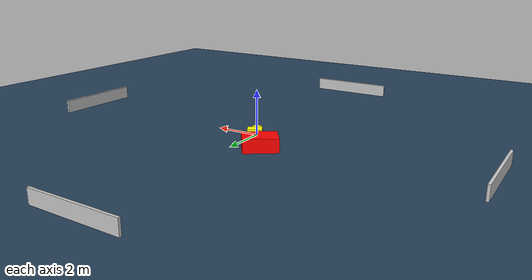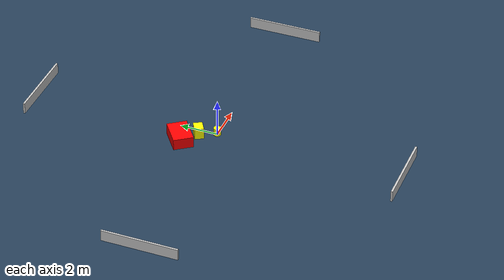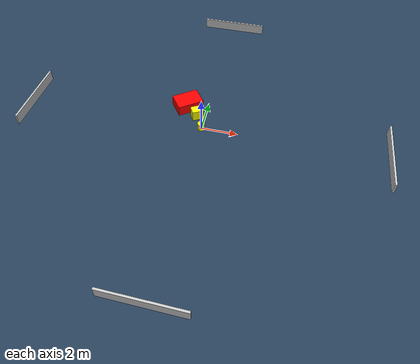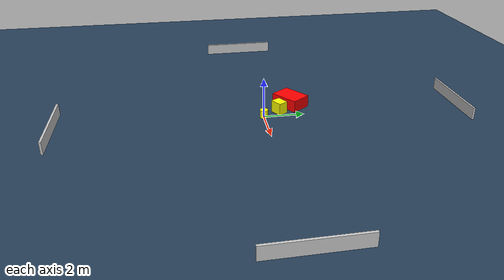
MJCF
<?xml version="1.0" ?>
<mujoco model="generated_environment">
  <option timestep="0.01" integrator="RK4" cone="elliptic"/>
  <default>
    <geom density="1"/>
  </default>
  <asset>
    <texture builtin="gradient" height="3072" name="skybox" rgb1="0.3 0.5 0.7" rgb2="0 0 0" type="skybox" width="512"/>
    <texture builtin="checker" height="300" name="groundplane" rgb1="0.2 0.3 0.4" rgb2="0.1 0.2 0.3" type="2d" width="300"/>
    <material name="groundplane" reflectance="0.2" texrepeat="5 5" texture="groundplane"/>
  </asset>
  <worldbody>
    <light dir="0 0 -1" directional="true" pos="0 0 1.5"/>
    <geom condim="3" friction="0.5 0.005 0.001" material="groundplane" name="floor" pos="0 0 0" size="0 0 0.05" type="plane"/>
    <body name="walls">
      <geom name="wall_1" condim="4" pos="-10.0 0.0 0.3" rgba="0.800000011920929 0.800000011920929 0.800000011920929 1.0" size="0.05 2.0 0.3" type="box"/>
      <geom name="wall_2" condim="4" pos="10.0 0.0 0.3" rgba="0.800000011920929 0.800000011920929 0.800000011920929 1.0" size="0.05 2.0 0.3" type="box"/>
      <geom name="wall_3" condim="4" pos="0.0 -10.0 0.3" rgba="0.800000011920929 0.800000011920929 0.800000011920929 1.0" size="2.0 0.05 0.3" type="box"/>
      <geom name="wall_4" condim="4" pos="0.0 10.0 0.3" rgba="0.800000011920929 0.800000011920929 0.800000011920929 1.0" size="2.0 0.05 0.3" type="box"/>
    </body>
    <body name="robot">
      <joint name="joint_x" type="slide" pos="0 0 0" axis="1 0 0"/>
      <joint name="joint_y" type="slide" pos="0 0 0" axis="0 1 0"/>
      <geom name="robot" type="cylinder" pos="0.0 0.0 0.2" size="0.2 0.2 0.0" mass="5.0" friction="1.0 0.005 0.0001" condim="4" rgba="1.0 1.0 0.0 1.0"/>
    </body>
    <body name="obstacle_1_movable">
      <geom name="obstacle_1_movable" condim="4" pos="-0.45115280349503356 0.8574841028197704 0.3" euler="0 0 120.24017153964179" friction="0.0 0.005 0.001" rgba="1.0 1.0 0.0 1.0" size="0.24356470211184383 0.3088845739320279 0.3" type="box" mass="0.1"/>
      <joint type="free"/>
    </body>
    <body name="obstacle_2_static">
      <geom name="obstacle_2_static" condim="4" pos="-1.1641646841936677 1.5785952578804512 0.3" euler="0 0 36.413437117188586" friction="0.0 0.005 0.001" rgba="1.0 0.0 0.0 1.0" size="0.7422397475480216 0.5312400376489086 0.3" type="box"/>
    </body>
  </worldbody>
  <actuator>
    <motor name="actuator_x" joint="joint_x" gear="1" ctrlrange="-1 1"/>
    <motor name="actuator_y" joint="joint_y" gear="1" ctrlrange="-1 1"/>
  </actuator>
</mujoco>
